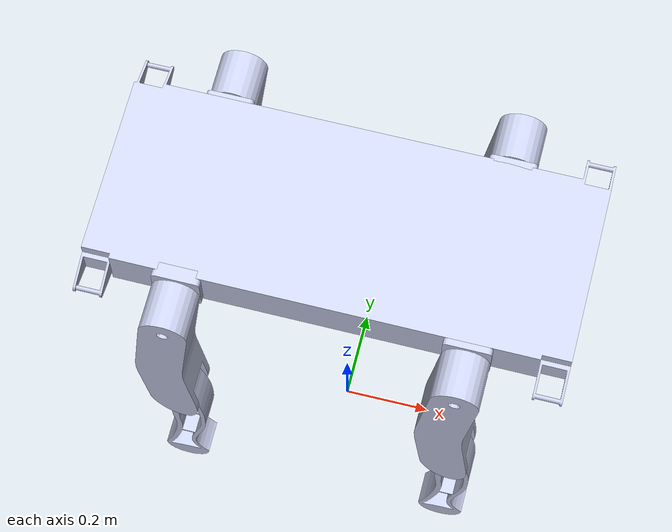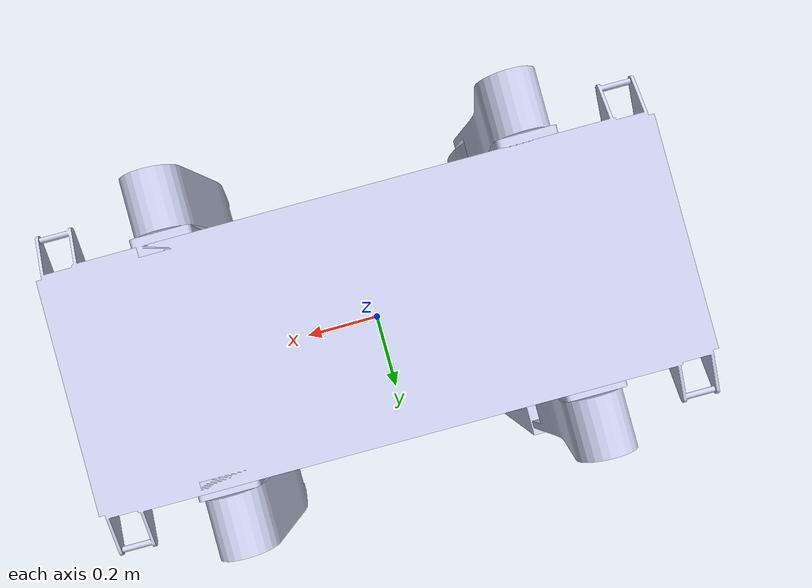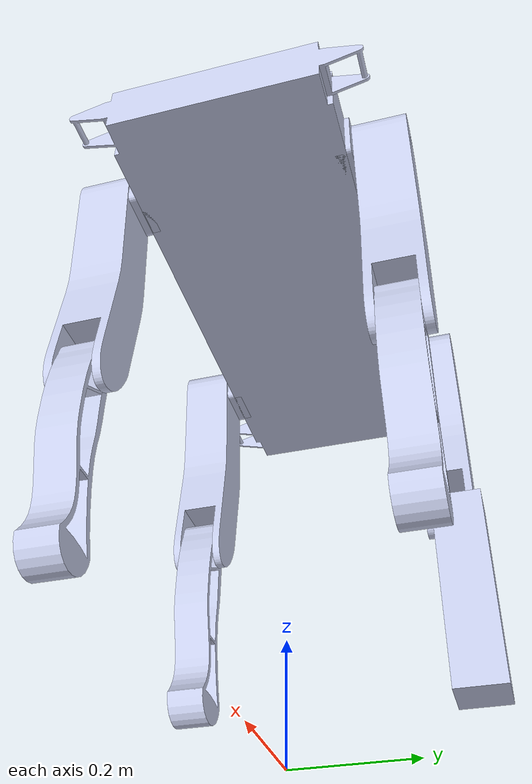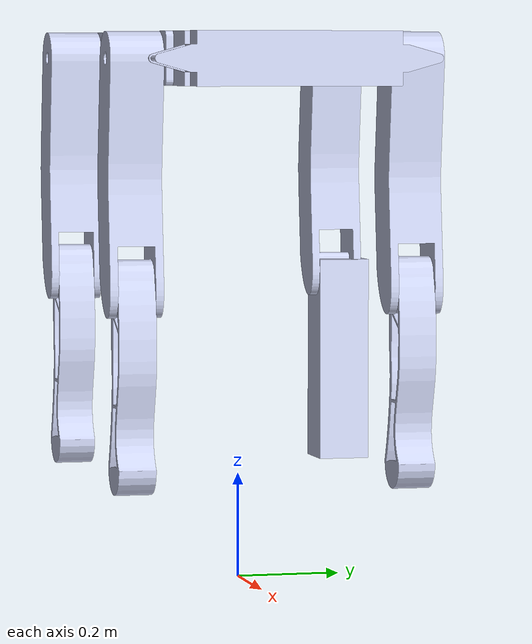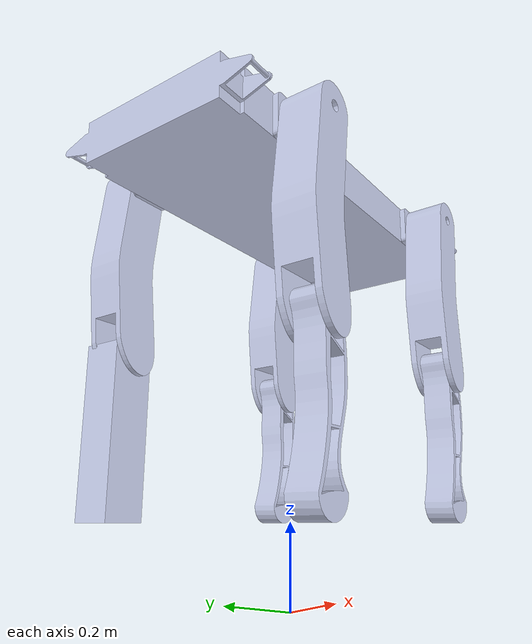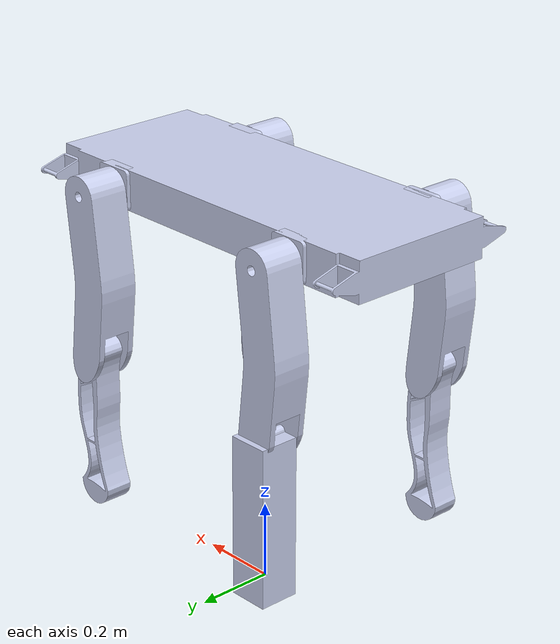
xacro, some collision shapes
<?xml version="1.0" encoding="utf-8"?>

<!-- A QUADRUPED NAMED TACHYON. I just like that name :) -->

<robot name="tachyon" xmlns:xacro="http://www.ros.org/wiki/xacro">

  <!-- Lower and upper limits for the shoulder, upper limb and lower limb joints -->
  <xacro:property name="lower_shoulder" value="-0.90"/>
  <xacro:property name="upper_shoulder" value="0.90"/>
  <xacro:property name="lower_upper_limb" value="-2.06"/>
  <xacro:property name="upper_upper_limb" value="2.06"/>
  <xacro:property name="lower_lower_limb" value="-2.06"/>
  <xacro:property name="upper_lower_limb" value="2.06"/>

  <xacro:include filename="$(find tachyon)/urdf/tachyon.gazebo"/>

  <xacro:property name="damp" value="0.3"/>
  <xacro:property name="friction" value="0.1"/>
  <xacro:property name="velocity" value="0.5"/>
  <xacro:property name="effort" value="1500"/>
  <xacro:property name="mu1" value="0.7"/>
  <xacro:property name="mu2" value="0.7"/>

  <xacro:macro name="default_transmission" params="name joint_name">
    <transmission name="transmission_for_${name}">
        <type>transmission_interface/SimpleTransmission</type>
        <joint name="${joint_name}">
            <hardwareInterface>hardware_interface/EffortJointInterface</hardwareInterface>
        </joint>

        <actuator name="motor_for_${name}">
            <hardwareInterface>hardware_interface/EffortJointInterface</hardwareInterface>
            <mechanicalReduction>1</mechanicalReduction>
        </actuator>

    </transmission>
  </xacro:macro>

  <!-- Base Link -->
  <link
    name="base_link">
    <inertial>
      <origin
        xyz="0.0090441 -0.0017763 1"
        rpy="0 0 0" />
      <mass
        value="12.824" />
      <inertia
        ixx="0.28319"
        ixy="-0.0019487"
        ixz="-1.2976E-06"
        iyy="1.3553"
        iyz="5.0637E-07"
        izz="1.4985" />
    </inertial>
    <visual>
      <origin
        xyz="0 0 1"
        rpy="0 0 0" />
      <geometry>
        <mesh
          filename="package://tachyon/meshes/base_link.STL" />
      </geometry>
      <material
        name="">
        <color
          rgba="0.79216 0.81961 0.93333 1" />
      </material>
    </visual>
    <collision>
      <origin
        xyz="0 0 1"
        rpy="0 0 0" />
      <geometry>
        <box size="1 0.4 0.2"/>
      </geometry>
    </collision>
  </link>

  <!-- Front Left Limb -->
  <link
    name="swing_link_front_left">
    <inertial>
      <origin
        xyz="-0.0500000000000007 -0.0270678226112841 1.40574217782001E-15"
        rpy="0 0 0" />
      <mass
        value="0.414191236384345" />
      <inertia
        ixx="0.00039937576193217"
        ixy="-3.32555452602677E-19"
        ixz="7.15908570969894E-23"
        iyy="0.000597919401912998"
        iyz="-8.08379642835925E-21"
        izz="0.000452984578307331" />
    </inertial>
    <visual>
      <origin
        xyz="0 0 0"
        rpy="0 0 0" />
      <geometry>
        <mesh
          filename="package://tachyon/meshes/swing_link_front_left.STL" />
      </geometry>
      <material
        name="">
        <color
          rgba="0.792156862745098 0.819607843137255 0.933333333333333 1" />
      </material>
    </visual>
    <collision>
      <origin
        xyz="0 0 0"
        rpy="0 0 0" />
      <geometry>
        <box size="0.1 0.1 0.1"/>
      </geometry>
    </collision>
  </link>

  <joint
    name="base_link_to_front_left_leg"
    type="revolute">
    <origin
      xyz="0.245526363586769 0.162876303538725 1"
      rpy="0 0 -3.14159265358979" />
    <parent
      link="base_link" />
    <child
      link="swing_link_front_left" />
    <axis
      xyz="1 0 0" />
      <limit effort="${effort}" lower="${lower_shoulder}" upper="${upper_shoulder}" velocity="${velocity}"/>
    <dynamics
      damping="${damp}"
      friction="${friction}" />
  </joint>

  <link
    name="upper_limb_link_front_left">
    <inertial>
      <origin
        xyz="-0.010966171906638 0.0499999747659611 -0.195723156478282"
        rpy="0 0 0" />
      <mass
        value="1.95817516519427" />
      <inertia
        ixx="0.0258175996818492"
        ixy="-3.84178471724602E-08"
        ixz="-0.00120773015606982"
        iyy="0.0255051336123879"
        iyz="-9.74340791236995E-10"
        izz="0.00494126700774013" />
    </inertial>
    <visual>
      <origin
        xyz="0 0 0"
        rpy="0 0 0" />
      <geometry>
        <mesh
          filename="package://tachyon/meshes/upper_limb_link_front_left.STL" />
      </geometry>
      <material
        name="">
        <color
          rgba="0.792156862745098 0.819607843137255 0.933333333333333 1" />
      </material>
    </visual>
    <collision>
      <origin
        xyz="0 0.05 -0.2"
        rpy="0 0 0" />
      <geometry>
        <box size="0.1 0.1 0.4"/>
      </geometry>
    </collision>
  </link>

  <joint
    name="swing_link_to_upper_limb_link_joint_front_left"
    type="revolute">
    <origin
      xyz="-0.0499999999999999 -0.049997734345438 0"
      rpy="0 0 3.14159265358979" />
    <parent
      link="swing_link_front_left" />
    <child
      link="upper_limb_link_front_left" />
    <axis
      xyz="0 1 0" />
      <limit
      lower="${lower_upper_limb}"
      upper="${upper_upper_limb}"
      effort="${effort}"
      velocity="${velocity}" />
    <dynamics
      damping="${damp}"
      friction="${friction}" />
  </joint>

  <link
    name="lower_limb_link_front_left">
    <inertial>
      <origin
        xyz="0.00525347694550699 0.0350021540283263 -0.1897008983798"
        rpy="0 0 0" />
      <mass
        value="1.10507308028095" />
      <inertia
        ixx="0.0232214605443888"
        ixy="2.77735685257532E-08"
        ixz="-0.000405908720123269"
        iyy="0.0234825758483115"
        iyz="-1.3717004284145E-07"
        izz="0.00116342257277221" />
    </inertial>
    <visual>
      <origin
        xyz="0 0 0"
        rpy="0 0 0" />
      <geometry>
        <mesh
          filename="package://tachyon/meshes/lower_limb_link_front_left.STL" />
      </geometry>
      <material
        name="">
        <color
          rgba="0.792156862745098 0.819607843137255 0.933333333333333 1" />
      </material>
    </visual>
    <collision>
      <origin
        xyz="0 0.05 -0.2"
        rpy="0 0 0" />
      <geometry>
        <box size="0.1 0.1 0.4"/>
      </geometry>
    </collision>
  </link>

  <joint
    name="upper_limb_link_to_lower_limb_link_joint_front_left"
    type="revolute">
    <origin
      xyz="-0.00273365306192419 0.0150000000000008 -0.403460545677345"
      rpy="0 0 0" />
    <parent
      link="upper_limb_link_front_left" />
    <child
      link="lower_limb_link_front_left" />
    <axis
      xyz="0 1 0" />
    <limit
      lower="${lower_lower_limb}"
      upper="${upper_lower_limb}"
      effort="${effort}"
      velocity="${velocity}" />
    <dynamics
      damping="${damp}"
      friction="${friction}" />
  </joint>

  <!-- Front Right Limb -->
  <link
    name="swing_link_front_right">
    <inertial>
      <origin
        xyz="0.05 -0.027067822611284 -1.42717924174675E-15"
        rpy="0 0 0" />
      <mass
        value="0.414191236384345" />
      <inertia
        ixx="0.00039937576193217"
        ixy="-1.52495900169695E-20"
        ixz="-8.03399169942128E-21"
        iyy="0.000597919401912998"
        iyz="1.79321795069259E-20"
        izz="0.000452984578307331" />
    </inertial>
    <visual>
      <origin
        xyz="0 0 0"
        rpy="0 0 0" />
      <geometry>
        <mesh
          filename="package://tachyon/meshes/swing_link_front_right.STL" />
      </geometry>
      <material
        name="">
        <color
          rgba="0.792156862745098 0.819607843137255 0.933333333333333 1" />
      </material>
    </visual>
    <collision>
      <origin
        xyz="0 0 0"
        rpy="0 0 0" />
      <geometry>
        <box size="0.1 0.1 0.1"/>
      </geometry>
    </collision>
  </link>

  <joint
    name="base_link_to_front_right_leg"
    type="revolute">
    <origin
      xyz="0.245526363586771 -0.167123696461276 1"
      rpy="0 0 0" />
    <parent
      link="base_link" />
    <child
      link="swing_link_front_right" />
    <axis
      xyz="1 0 0" />
      <limit effort="${effort}" lower="${lower_shoulder}" upper="${upper_shoulder}" velocity="${velocity}"/>
    <dynamics
      damping="${damp}"
      friction="${friction}" />
  </joint>

  <link
    name="upper_limb_link_front_right">
    <inertial>
      <origin
        xyz="-0.0109661719066364 -0.0500000252340397 -0.195723156478285"
        rpy="0 0 0" />
      <mass
        value="1.95817516519428" />
      <inertia
        ixx="0.0258175996818492"
        ixy="-3.84178471717061E-08"
        ixz="-0.00120773015606981"
        iyy="0.0255051336123879"
        iyz="-9.7434079184995E-10"
        izz="0.00494126700774015" />
    </inertial>
    <visual>
      <origin
        xyz="0 0 0"
        rpy="0 0 0" />
      <geometry>
        <mesh
          filename="package://tachyon/meshes/upper_limb_link_front_right.STL" />
      </geometry>
      <material
        name="">
        <color
          rgba="0.792156862745098 0.819607843137255 0.933333333333333 1" />
      </material>
    </visual>
    <collision>
      <origin
        xyz="0 -0.05 -0.2"
        rpy="0 0 0" />
      <geometry>
        <box size="0.1 0.1 0.4"/>
      </geometry>
    </collision>
  </link>

  <joint
    name="swing_link_to_upper_limb_link_joint_front_right"
    type="revolute">
    <origin
      xyz="0.05 -0.0499977343454362 0"
      rpy="0 0 0" />
    <parent
      link="swing_link_front_right" />
    <child
      link="upper_limb_link_front_right" />
    <axis
      xyz="0 1 0" />
    <limit
      lower="${lower_upper_limb}"
      upper="${upper_upper_limb}"
      effort="${effort}"
      velocity="${velocity}" />
    <dynamics
      damping="${damp}"
      friction="${friction}" />
  </joint>

  <link
    name="lower_limb_link_front_right">
    <inertial>
      <origin
        xyz="0.00525347694550743 -0.0349978459716738 -0.1897008983798"
        rpy="0 0 0" />
      <mass
        value="1.10507308028094" />
      <inertia
        ixx="0.0232214605443887"
        ixy="2.77735685256535E-08"
        ixz="-0.000405908720123268"
        iyy="0.0234825758483114"
        iyz="-1.37170042841387E-07"
        izz="0.00116342257277221" />
    </inertial>
    <visual>
      <origin
        xyz="0 0 0"
        rpy="0 0 0" />
      <geometry>
        <mesh
          filename="package://tachyon/meshes/lower_limb_link_front_right.STL" />
      </geometry>
      <material
        name="">
        <color
          rgba="0.792156862745098 0.819607843137255 0.933333333333333 1" />
      </material>
    </visual>
    <collision>
      <origin
        xyz="0 -0.05 -0.2"
        rpy="0 0 0" />
      <geometry>
        <box size="0.1 0.1 0.4"/>
      </geometry>
    </collision>
  </link>

  <joint
    name="upper_limb_link_to_lower_limb_link_joint_front_right"
    type="revolute">
    <origin
      xyz="-0.00273365306192319 -0.015 -0.403460545677348"
      rpy="0 0 0" />
    <parent
      link="upper_limb_link_front_right" />
    <child
      link="lower_limb_link_front_right" />
    <axis
      xyz="0 1 0" />
    <limit
      lower="${lower_lower_limb}"
      upper="${upper_lower_limb}"
      effort="${effort}"
      velocity="${velocity}" />
    <dynamics
      damping="${damp}"
      friction="${friction}" />
  </joint>

  <!-- Back Right Limb -->
  <link
    name="swing_link_back_right">
    <inertial>
      <origin
        xyz="-0.05 -0.0270678226112841 -1.40680606241962E-15"
        rpy="0 0 0" />
      <mass
        value="0.414191236384345" />
      <inertia
        ixx="0.00039937576193217"
        ixy="-1.52773727632641E-20"
        ixz="-9.81759989523875E-21"
        iyy="0.000597919401912998"
        iyz="1.95455342462541E-20"
        izz="0.000452984578307331" />
    </inertial>
    <visual>
      <origin
        xyz="0 0 0"
        rpy="0 0 0" />
      <geometry>
        <mesh
          filename="package://tachyon/meshes/swing_link_back_right.STL" />
      </geometry>
      <material
        name="">
        <color
          rgba="0.792156862745098 0.819607843137255 0.933333333333333 1" />
      </material>
    </visual>
    <collision>
      <origin
        xyz="0 0 0"
        rpy="0 0 0" />
      <geometry>
        <box size="0.1 0.1 0.1"/>
      </geometry>
    </collision>
  </link>

  <joint
    name="base_link_to_back_right_leg"
    type="revolute">
    <origin
      xyz="-0.249773756509325 -0.167123696461276 1"
      rpy="0 0 0" />
    <parent
      link="base_link" />
    <child
      link="swing_link_back_right" />
    <axis
      xyz="1 0 0" />
      <limit effort="${effort}" lower="${lower_shoulder}" upper="${upper_shoulder}" velocity="${velocity}"/>
    <dynamics
      damping="${damp}"
      friction="${friction}" />
  </joint>

  <link
    name="upper_limb_link_back_right">
    <inertial>
      <origin
        xyz="-0.0109661719066364 -0.0500000252340398 -0.195723156478284"
        rpy="0 0 0" />
      <mass
        value="1.95817516519427" />
      <inertia
        ixx="0.0258175996818492"
        ixy="-3.84178471723798E-08"
        ixz="-0.00120773015606981"
        iyy="0.0255051336123879"
        iyz="-9.7434079393868E-10"
        izz="0.00494126700774013" />
    </inertial>
    <visual>
      <origin
        xyz="0 0 0"
        rpy="0 0 0" />
      <geometry>
        <mesh
          filename="package://tachyon/meshes/upper_limb_link_back_right.STL" />
      </geometry>
      <material
        name="">
        <color
          rgba="0.792156862745098 0.819607843137255 0.933333333333333 1" />
      </material>
    </visual>
    <collision>
      <origin
        xyz="0 -0.05 -0.2"
        rpy="0 0 0" />
      <geometry>
        <box size="0.1 0.1 0.4"/>
      </geometry>
    </collision>
  </link>

  <joint
    name="swing_link_to_upper_limb_link_joint_back_right"
    type="revolute">
    <origin
      xyz="-0.05 -0.0499977343454403 0"
      rpy="0 0 0" />
    <parent
      link="swing_link_back_right" />
    <child
      link="upper_limb_link_back_right" />
    <axis
      xyz="0 1 0" />
    <limit
      lower="${lower_upper_limb}"
      upper="${upper_upper_limb}"
      effort="${effort}"
      velocity="${velocity}" />
    <dynamics
      damping="${damp}"
      friction="${friction}" />
  </joint>

  <link
    name="lower_limb_link_back_right">
    <inertial>
      <origin
        xyz="0.00525347694550743 -0.0349978459716738 -0.1897008983798"
        rpy="0 0 0" />
      <mass
        value="1.10507308028094" />
      <inertia
        ixx="0.0232214605443888"
        ixy="2.77735685273775E-08"
        ixz="-0.000405908720123273"
        iyy="0.0234825758483114"
        iyz="-1.37170042841995E-07"
        izz="0.00116342257277221" />
    </inertial>
    <visual>
      <origin
        xyz="0 0 0"
        rpy="0 0 0" />
      <geometry>
        <mesh
          filename="package://tachyon/meshes/lower_limb_link_back_right.STL" />
      </geometry>
      <material
        name="">
        <color
          rgba="0.792156862745098 0.819607843137255 0.933333333333333 1" />
      </material>
    </visual>
    <collision>
      <origin
        xyz="0 -0.05 -0.2"
        rpy="0 0 0" />
      <geometry>
        <box size="0.1 0.1 0.4"/>
      </geometry>
    </collision>
  </link>

  <joint
    name="upper_limb_link_to_lower_limb_link_joint_back_right"
    type="revolute">
    <origin
      xyz="-0.00273365306192319 -0.015 -0.403460545677347"
      rpy="0 0 0" />
    <parent
      link="upper_limb_link_back_right" />
    <child
      link="lower_limb_link_back_right" />
    <axis
      xyz="0 1 0" />
    <limit
      lower="${lower_lower_limb}"
      upper="${upper_lower_limb}"
      effort="${effort}"
      velocity="${velocity}" />
    <dynamics
      damping="${damp}"
      friction="${friction}" />
  </joint>

  <!-- Back Left Limb -->
  <link
    name="swing_link_back_left">
    <inertial>
      <origin
        xyz="0.0500000000000008 -0.0270678226112839 1.39804084625051E-15"
        rpy="0 0 0" />
      <mass
        value="0.414191236384345" />
      <inertia
        ixx="0.000399375761932169"
        ixy="-3.34566858876941E-19"
        ixz="4.84338901576223E-21"
        iyy="0.000597919401912998"
        iyz="-9.82976664330546E-21"
        izz="0.000452984578307331" />
    </inertial>
    <visual>
      <origin
        xyz="0 0 0"
        rpy="0 0 0" />
      <geometry>
        <mesh
          filename="package://tachyon/meshes/swing_link_back_left.STL" />
      </geometry>
      <material
        name="">
        <color
          rgba="0.792156862745098 0.819607843137255 0.933333333333333 1" />
      </material>
    </visual>
    <collision>
      <origin
        xyz="0 0 0"
        rpy="0 0 0" />
      <geometry>
        <box size="0.1 0.1 0.1"/>
      </geometry>
    </collision>
  </link>

  <joint
    name="base_link_to_back_left_leg"
    type="revolute">
    <origin
      xyz="-0.249773756509325 0.162876303538722 1"
      rpy="0 0 -3.14159265358979" />
    <parent
      link="base_link" />
    <child
      link="swing_link_back_left" />
    <axis
      xyz="1 0 0" />
      <limit effort="${effort}" lower="${lower_shoulder}" upper="${upper_shoulder}" velocity="${velocity}"/>
    <dynamics
      damping="${damp}"
      friction="${friction}" />
  </joint>

  <link
    name="upper_limb_link_back_left">
    <inertial>
      <origin
        xyz="-0.0109661719066381 0.0499999747659611 -0.195723156478281"
        rpy="0 0 0" />
      <mass
        value="1.95817516519427" />
      <inertia
        ixx="0.0258175996818492"
        ixy="-3.84178471719037E-08"
        ixz="-0.00120773015606981"
        iyy="0.0255051336123879"
        iyz="-9.74340790329521E-10"
        izz="0.00494126700774012" />
    </inertial>
    <visual>
      <origin
        xyz="0 0 0"
        rpy="0 0 0" />
      <geometry>
        <mesh
          filename="package://tachyon/meshes/upper_limb_link_back_left.STL" />
      </geometry>
      <material
        name="">
        <color
          rgba="0.792156862745098 0.819607843137255 0.933333333333333 1" />
      </material>
    </visual>
    <collision>
      <origin
        xyz="0 0.05 -0.2"
        rpy="0 0 0" />
      <geometry>
        <box size="0.1 0.1 0.4"/>
      </geometry>
    </collision>
  </link>

  <joint
    name="swing_link_to_upper_limb_link_joint_back_left"
    type="revolute">
    <origin
      xyz="0.0500000000000016 -0.0499977343454379 0"
      rpy="0 0 3.14159265358979" />
    <parent
      link="swing_link_back_left" />
    <child
      link="upper_limb_link_back_left" />
    <axis
      xyz="0 1 0" />
    <limit
      lower="${lower_upper_limb}"
      upper="${upper_upper_limb}"
      effort="${effort}"
      velocity="${velocity}" />
    <dynamics
      damping="${damp}"
      friction="${friction}" />
  </joint>

  <link
    name="lower_limb_link_back_left">
    <inertial>
      <origin
        xyz="0.0052535 0.035002 -0.1897"
        rpy="0 0 0" />
      <mass
        value="1.1051" />
      <inertia
        ixx="0.023221"
        ixy="2.7774E-08"
        ixz="-0.00040591"
        iyy="0.023483"
        iyz="-1.3717E-07"
        izz="0.0011634" />
    </inertial>
    <visual>
      <origin
        xyz="0 0 0"
        rpy="0 0 0" />
      <geometry>
        <mesh
          filename="package://tachyon/meshes/lower_limb_link_back_left.STL" />
      </geometry>
      <material
        name="">
        <color
          rgba="0.79216 0.81961 0.93333 1" />
      </material>
    </visual>
    <collision>
      <origin
        xyz="0 0.05 -0.2"
        rpy="0 0 0" />
      <geometry>
        <box size="0.1 0.1 0.4"/>
      </geometry>
    </collision>
  </link>

  <joint
    name="upper_limb_link_to_lower_limb_link_joint_back_left"
    type="revolute">
    <origin
      xyz="-0.0027337 0.015 -0.40346"
      rpy="0 0 0" />
    <parent
      link="upper_limb_link_back_left" />
    <child
      link="lower_limb_link_back_left" />
    <axis
      xyz="0 1 0" />
    <limit
      lower="${lower_lower_limb}"
      upper="${upper_lower_limb}"
      effort="${effort}"
      velocity="${velocity}" />
    <dynamics
      damping="${damp}"
      friction="${friction}" />
  </joint>

  <xacro:default_transmission name="base_to_front_left" joint_name="base_link_to_front_left_leg"/>

  <xacro:default_transmission name="swing_link_to_upper_limb_front_left" joint_name="swing_link_to_upper_limb_link_joint_front_left"/>

  <xacro:default_transmission name="upper_limb_to_lower_limb_front_left" joint_name="upper_limb_link_to_lower_limb_link_joint_front_left"/>

  <xacro:default_transmission name="base_to_front_right" joint_name="base_link_to_front_right_leg"/>

  <xacro:default_transmission name="swing_link_to_upper_limb_front_right" joint_name="swing_link_to_upper_limb_link_joint_front_right"/>

  <xacro:default_transmission name="upper_limb_to_lower_limb_front_right" joint_name="upper_limb_link_to_lower_limb_link_joint_front_right"/>

  <xacro:default_transmission name="base_to_back_left" joint_name="base_link_to_back_left_leg"/>

  <xacro:default_transmission name="swing_link_to_upper_limb_back_left" joint_name="swing_link_to_upper_limb_link_joint_back_left"/>

  <xacro:default_transmission name="upper_limb_to_lower_limb_back_left" joint_name="upper_limb_link_to_lower_limb_link_joint_back_left"/>

  <xacro:default_transmission name="base_to_back_right" joint_name="base_link_to_back_right_leg"/>

  <xacro:default_transmission name="swing_link_to_upper_limb_back_right" joint_name="swing_link_to_upper_limb_link_joint_back_right"/>

  <xacro:default_transmission name="upper_limb_to_lower_limb_back_right" joint_name="upper_limb_link_to_lower_limb_link_joint_back_right"/>

</robot>
